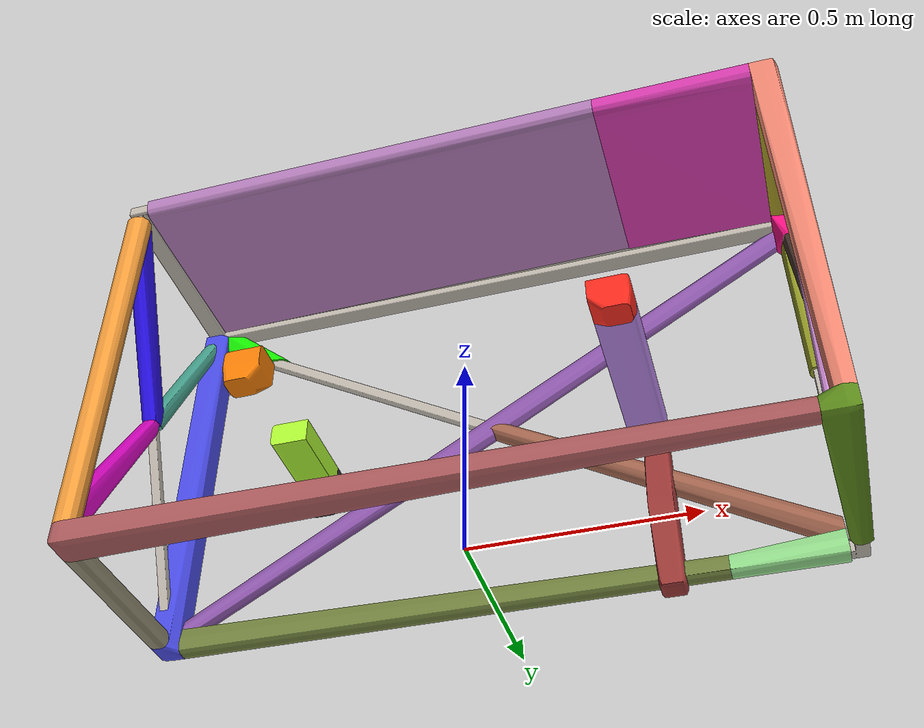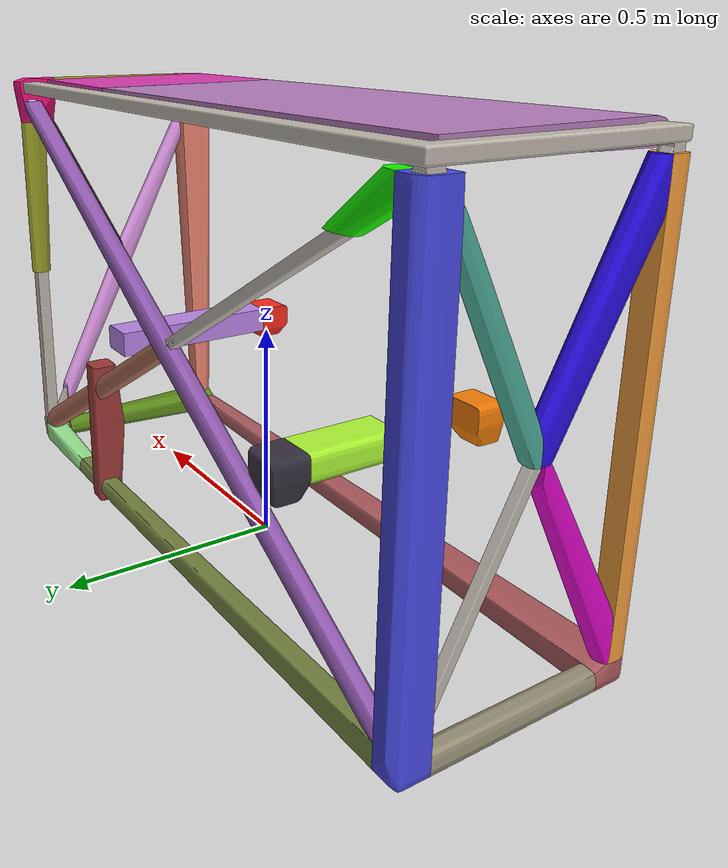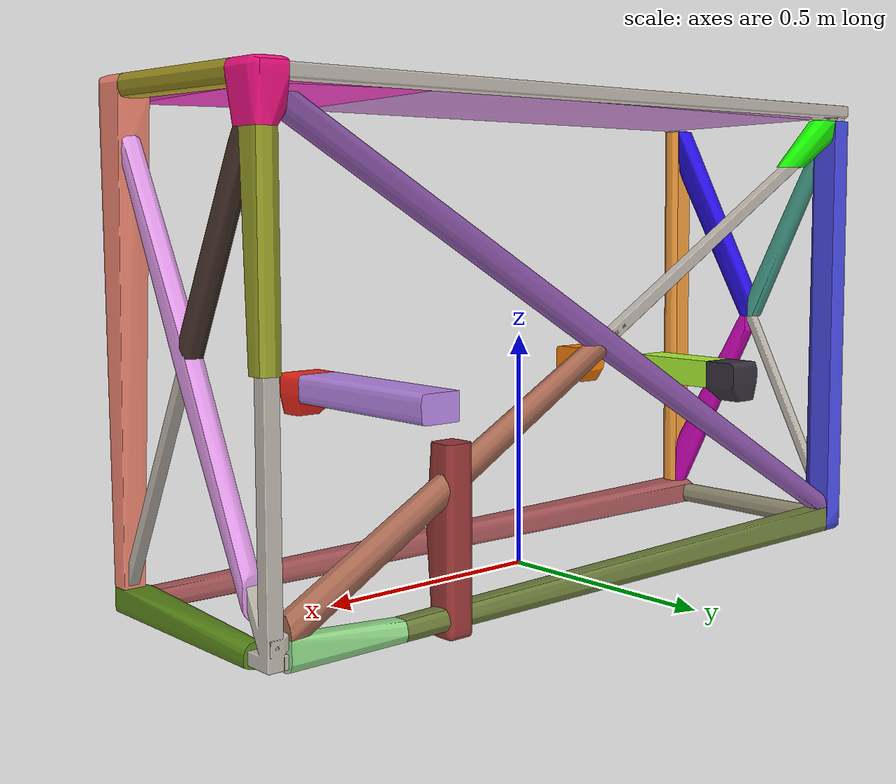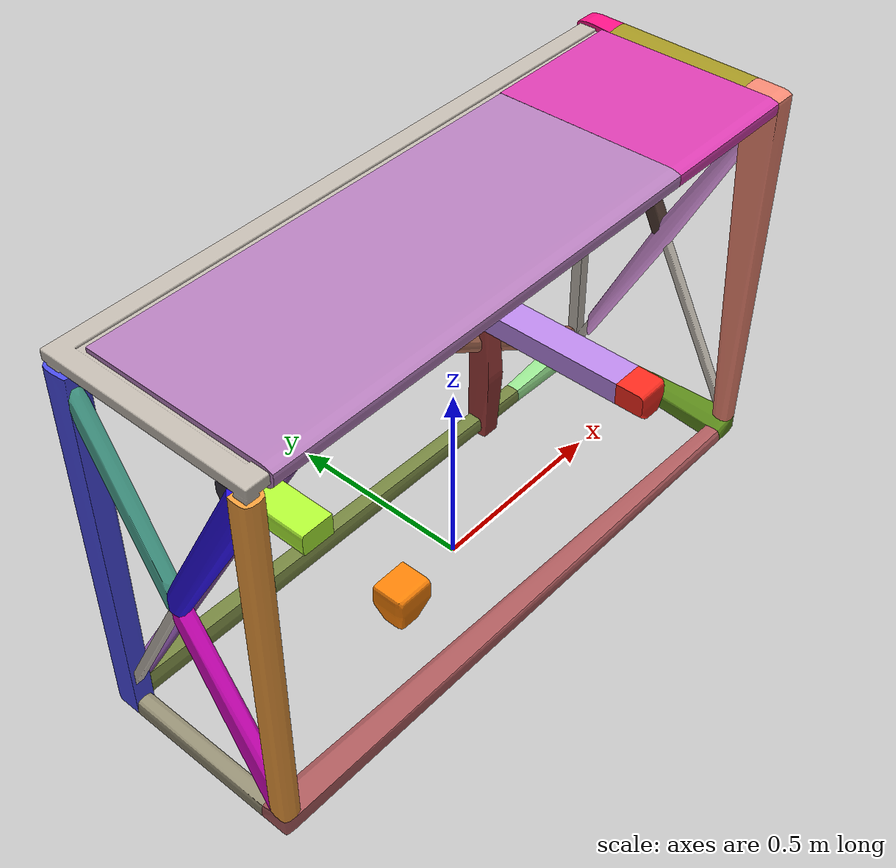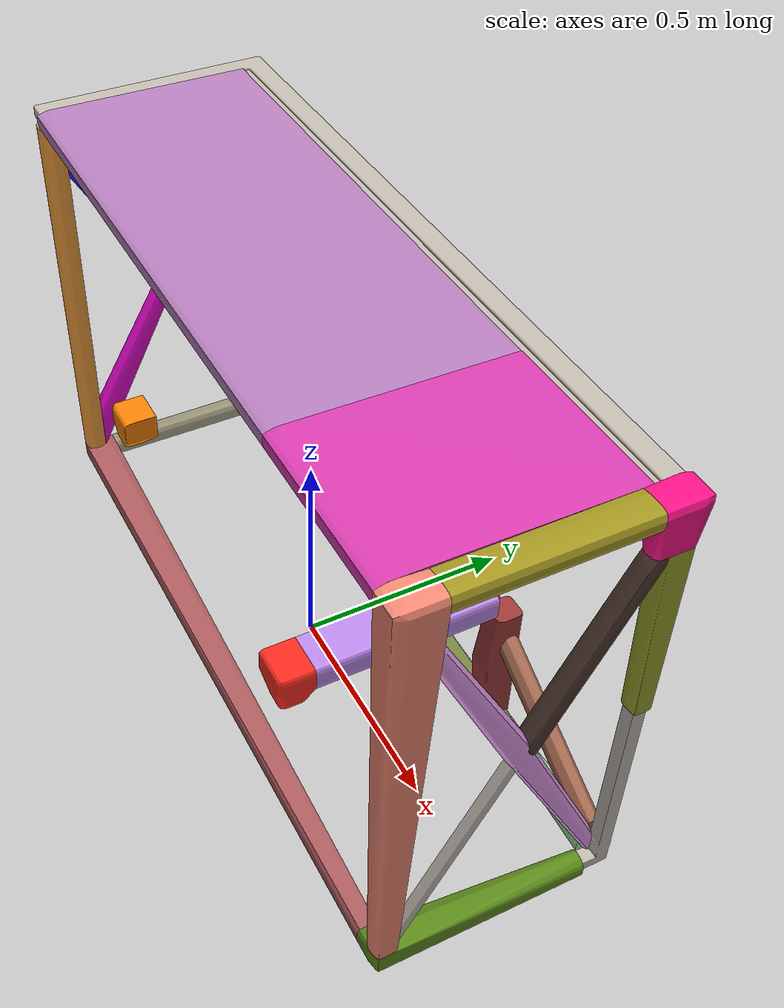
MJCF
<mujoco model="table">
  <default>
    <default class="visual">
      <geom group="1" type="mesh" contype="0" conaffinity="0"/>
    </default>
    <default class="collision">
      <geom group="0" type="mesh"/>
    </default>
  </default>
  <asset>
    <texture type="2d" name="Albedo_43347245-a39d-45f6-900b-9ea5154661a6" file="Albedo_43347245-a39d-45f6-900b-9ea5154661a6.png"/>
    <material name="_ANCFBOOCCACAAAAAFMBAAAAAAAAALPOEKPEE_" texture="Albedo_43347245-a39d-45f6-900b-9ea5154661a6" specular="0.5" shininess="0.5"/>
    <mesh name="table" file="table.obj"/>
    <mesh name="table_collision_0" file="table_collision_0.obj"/>
    <mesh name="table_collision_1" file="table_collision_1.obj"/>
    <mesh name="table_collision_2" file="table_collision_2.obj"/>
    <mesh name="table_collision_3" file="table_collision_3.obj"/>
    <mesh name="table_collision_4" file="table_collision_4.obj"/>
    <mesh name="table_collision_5" file="table_collision_5.obj"/>
    <mesh name="table_collision_6" file="table_collision_6.obj"/>
    <mesh name="table_collision_7" file="table_collision_7.obj"/>
    <mesh name="table_collision_8" file="table_collision_8.obj"/>
    <mesh name="table_collision_9" file="table_collision_9.obj"/>
    <mesh name="table_collision_10" file="table_collision_10.obj"/>
    <mesh name="table_collision_11" file="table_collision_11.obj"/>
    <mesh name="table_collision_12" file="table_collision_12.obj"/>
    <mesh name="table_collision_13" file="table_collision_13.obj"/>
    <mesh name="table_collision_14" file="table_collision_14.obj"/>
    <mesh name="table_collision_15" file="table_collision_15.obj"/>
    <mesh name="table_collision_16" file="table_collision_16.obj"/>
    <mesh name="table_collision_17" file="table_collision_17.obj"/>
    <mesh name="table_collision_18" file="table_collision_18.obj"/>
    <mesh name="table_collision_19" file="table_collision_19.obj"/>
    <mesh name="table_collision_20" file="table_collision_20.obj"/>
    <mesh name="table_collision_21" file="table_collision_21.obj"/>
    <mesh name="table_collision_22" file="table_collision_22.obj"/>
    <mesh name="table_collision_23" file="table_collision_23.obj"/>
    <mesh name="table_collision_24" file="table_collision_24.obj"/>
    <mesh name="table_collision_25" file="table_collision_25.obj"/>
    <mesh name="table_collision_26" file="table_collision_26.obj"/>
  </asset>
  <worldbody>
    <body>
      <body name="object">
        <geom material="_ANCFBOOCCACAAAAAFMBAAAAAAAAALPOEKPEE_" mesh="table" class="visual"/>
        <geom mesh="table_collision_0" rgba="0.6763935617492491 0.3553562717391734 0.36429453230811604 1" class="collision"/>
        <geom mesh="table_collision_1" rgba="0.845422694650701 0.23401438478057213 0.6837511721639868 1" class="collision"/>
        <geom mesh="table_collision_2" rgba="0.2851587480793194 0.294158086841536 0.9009718327286057 1" class="collision"/>
        <geom mesh="table_collision_3" rgba="0.6139534152215771 0.2255497011311992 0.2181775594937888 1" class="collision"/>
        <geom mesh="table_collision_4" rgba="0.7062281456465853 0.4918220939128679 0.7301988130812095 1" class="collision"/>
        <geom mesh="table_collision_5" rgba="0.453617171574188 0.5163102817276894 0.2481796870015306 1" class="collision"/>
        <geom mesh="table_collision_6" rgba="0.9770917901078526 0.1637592819975271 0.1140370558590511 1" class="collision"/>
        <geom mesh="table_collision_7" rgba="0.9709802641722476 0.06602417025767304 0.5214690278085332 1" class="collision"/>
        <geom mesh="table_collision_8" rgba="0.6889599763345848 0.9788394915413425 0.20479776367406233 1" class="collision"/>
        <geom mesh="table_collision_9" rgba="0.14808159819211664 0.05105606580163535 0.8744552573126566 1" class="collision"/>
        <geom mesh="table_collision_10" rgba="0.7248788557672589 0.5288755363859029 0.9078458153674126 1" class="collision"/>
        <geom mesh="table_collision_11" rgba="0.5548828454234661 0.3423291705636937 0.6739194955688811 1" class="collision"/>
        <geom mesh="table_collision_12" rgba="0.21041067787428014 0.19013400723477203 0.24355413254641067 1" class="collision"/>
        <geom mesh="table_collision_13" rgba="0.9708545161679403 0.49956005817690663 0.024165999122745307 1" class="collision"/>
        <geom mesh="table_collision_14" rgba="0.3561968106988007 0.5379004648139459 0.10010761453028516 1" class="collision"/>
        <geom mesh="table_collision_15" rgba="0.8788114619294936 0.5994019315147886 0.9056563633618608 1" class="collision"/>
        <geom mesh="table_collision_16" rgba="0.5930660249196801 0.6181903317001778 0.1536266764784857 1" class="collision"/>
        <geom mesh="table_collision_17" rgba="0.5832624926446663 0.5575546980723648 0.45596589434898627 1" class="collision"/>
        <geom mesh="table_collision_18" rgba="0.9406348046342948 0.5267738031222202 0.4431622186687628 1" class="collision"/>
        <geom mesh="table_collision_19" rgba="0.9510924120478021 0.6162907706480926 0.23429639025933946 1" class="collision"/>
        <geom mesh="table_collision_20" rgba="0.6382154368623204 0.5849566569433341 0.13163127424230514 1" class="collision"/>
        <geom mesh="table_collision_21" rgba="0.8699321360234179 0.028252975412840664 0.7763840508547137 1" class="collision"/>
        <geom mesh="table_collision_22" rgba="0.28945213594757013 0.20780125134888805 0.17499253637088985 1" class="collision"/>
        <geom mesh="table_collision_23" rgba="0.29317120499937244 0.6680130297196902 0.5879149108968166 1" class="collision"/>
        <geom mesh="table_collision_24" rgba="0.6512453416210281 0.4073934336081442 0.3163990708427715 1" class="collision"/>
        <geom mesh="table_collision_25" rgba="0.08653152807813713 0.9483117917823205 0.007130276163227478 1" class="collision"/>
        <geom mesh="table_collision_26" rgba="0.5916907914000903 0.8866466702269941 0.5609157517648461 1" class="collision"/>
      </body>
    </body>
  </worldbody>
</mujoco>
